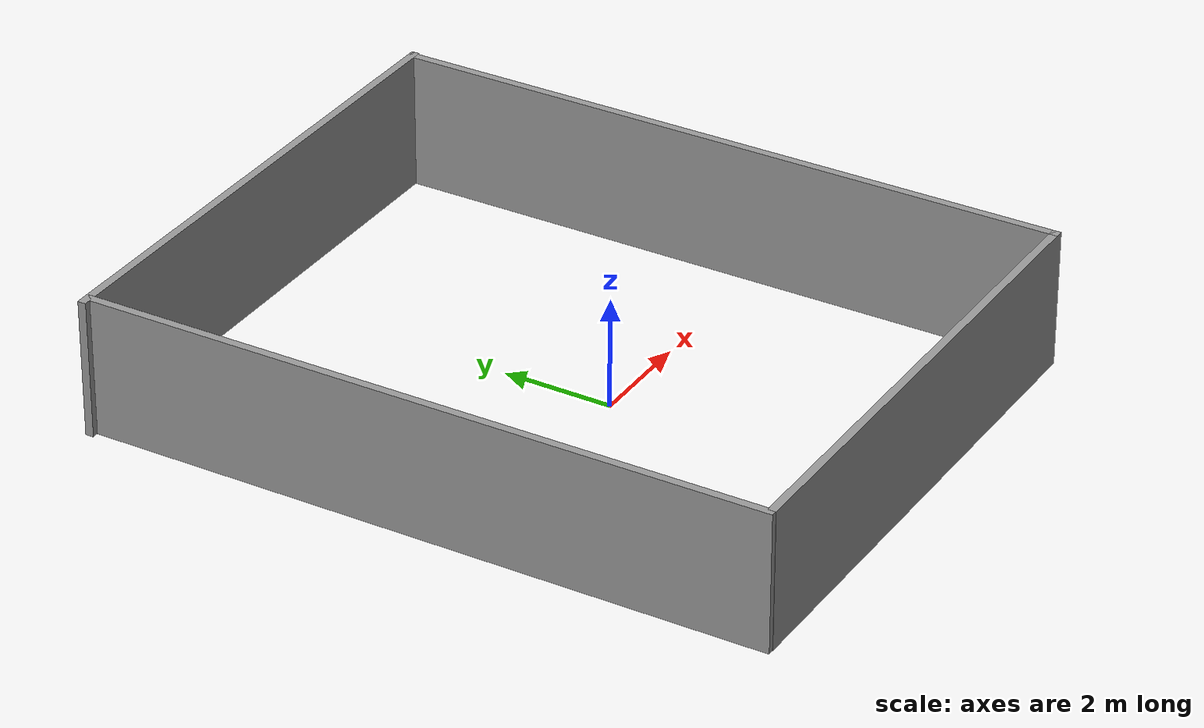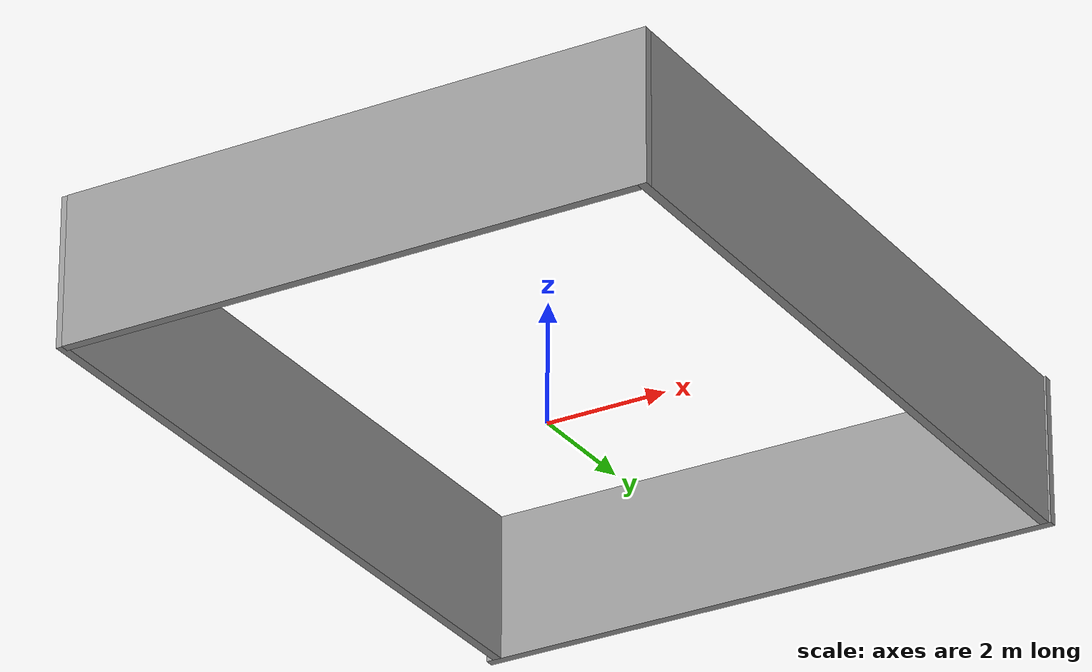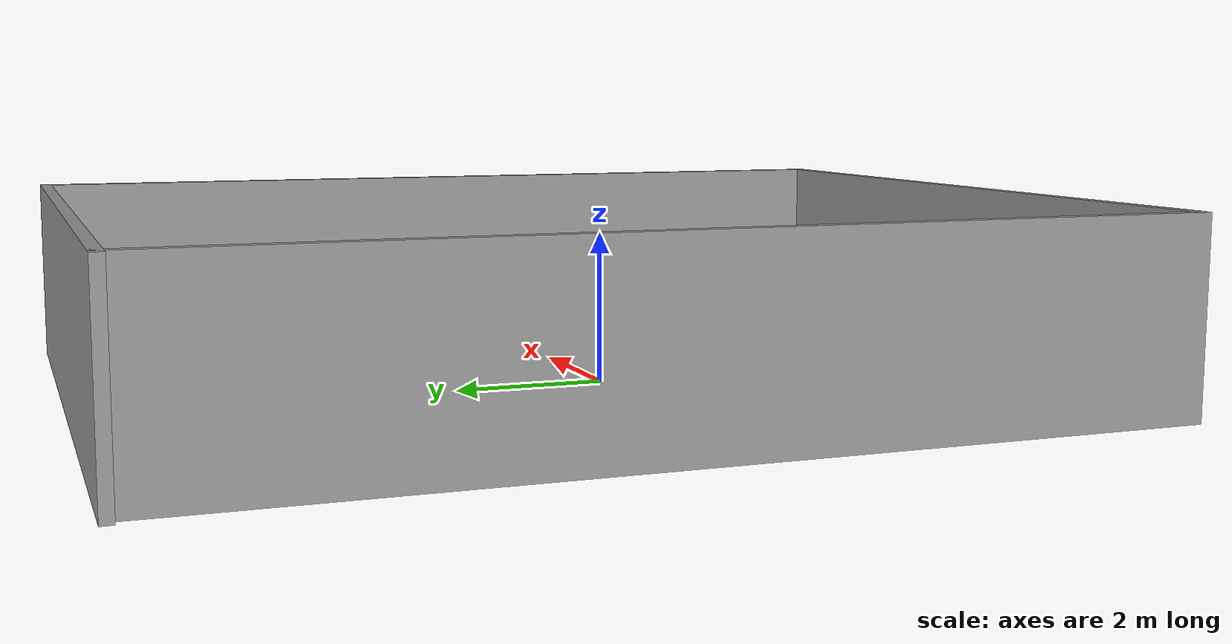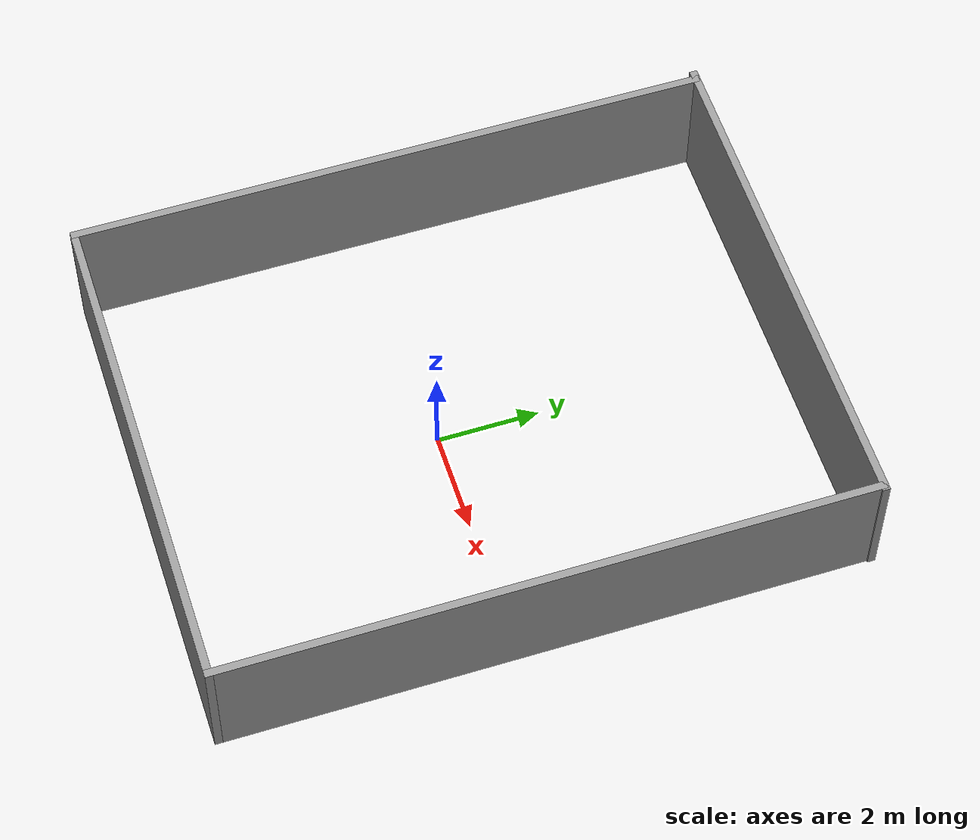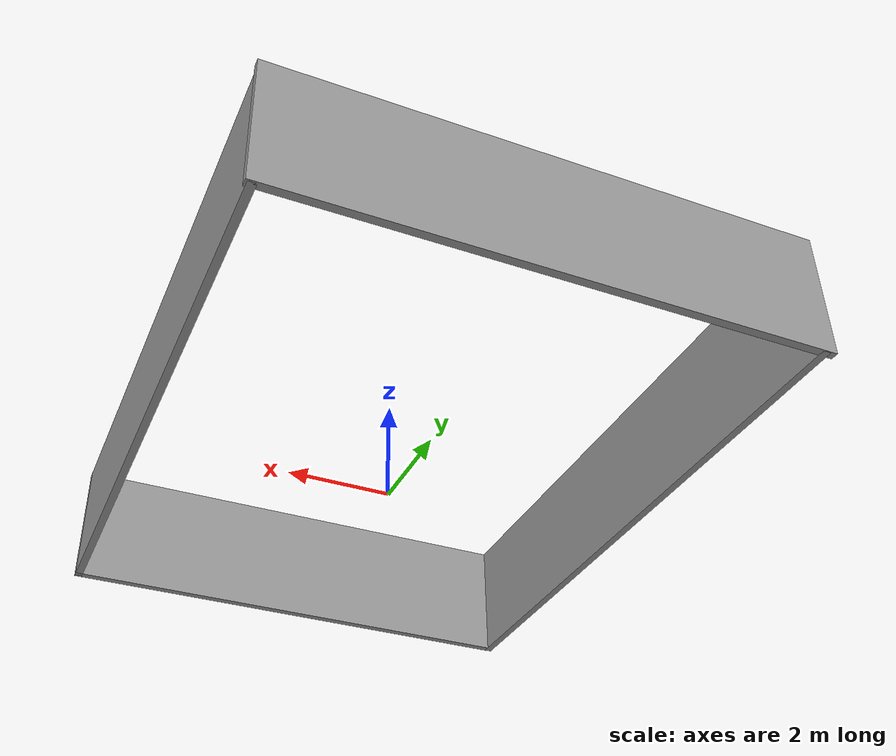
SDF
<?xml version='1.0'?>
<sdf version='1.7'>
  <model name='Building_1'>
    <pose>-0.066403 0.607288 0 0 -0 0</pose>
    <link name='Wall_0'>
      <collision name='Wall_0_Collision'>
        <geometry>
          <box>
            <size>12.5 0.15 2.5</size>
          </box>
        </geometry>
        <pose>0 0 1.25 0 -0 0</pose>
      </collision>
      <visual name='Wall_0_Visual'>
        <pose>0 0 1.25 0 -0 0</pose>
        <geometry>
          <box>
            <size>12.5 0.15 2.5</size>
          </box>
        </geometry>
        <material>
          <script>
            <uri>file://media/materials/scripts/gazebo.material</uri>
            <name>Gazebo/Grey</name>
          </script>
          <ambient>1 1 1 1</ambient>
        </material>
        <meta>
          <layer>0</layer>
        </meta>
      </visual>
      <pose>-4.8106 -0.006896 0 0 -0 1.5708</pose>
    </link>
    <link name='Wall_4'>
      <collision name='Wall_4_Collision'>
        <geometry>
          <box>
            <size>10 0.15 2.5</size>
          </box>
        </geometry>
        <pose>0 0 1.25 0 -0 0</pose>
      </collision>
      <visual name='Wall_4_Visual'>
        <pose>0 0 1.25 0 -0 0</pose>
        <geometry>
          <box>
            <size>10 0.15 2.5</size>
          </box>
        </geometry>
        <material>
          <script>
            <uri>file://media/materials/scripts/gazebo.material</uri>
            <name>Gazebo/Grey</name>
          </script>
          <ambient>1 1 1 1</ambient>
        </material>
        <meta>
          <layer>0</layer>
        </meta>
      </visual>
      <pose>-0 6.18946 0 0 -0 0</pose>
    </link>
    <link name='Wall_6'>
      <collision name='Wall_6_Collision'>
        <geometry>
          <box>
            <size>12.5 0.15 2.5</size>
          </box>
        </geometry>
        <pose>0 0 1.25 0 -0 0</pose>
      </collision>
      <visual name='Wall_6_Visual'>
        <pose>0 0 1.25 0 -0 0</pose>
        <geometry>
          <box>
            <size>12.5 0.15 2.5</size>
          </box>
        </geometry>
        <material>
          <script>
            <uri>file://media/materials/scripts/gazebo.material</uri>
            <name>Gazebo/Grey</name>
          </script>
          <ambient>1 1 1 1</ambient>
        </material>
        <meta>
          <layer>0</layer>
        </meta>
      </visual>
      <pose>4.89116 -0.01446 0 0 -0 -1.5708</pose>
    </link>
    <link name='Wall_7'>
      <collision name='Wall_7_Collision'>
        <geometry>
          <box>
            <size>9.75 0.15 2.5</size>
          </box>
        </geometry>
        <pose>0 0 1.25 0 -0 0</pose>
      </collision>
      <visual name='Wall_7_Visual'>
        <pose>0 0 1.25 0 -0 0</pose>
        <geometry>
          <box>
            <size>9.75 0.15 2.5</size>
          </box>
        </geometry>
        <material>
          <script>
            <uri>file://media/materials/scripts/gazebo.material</uri>
            <name>Gazebo/Grey</name>
          </script>
          <ambient>1 1 1 1</ambient>
        </material>
        <meta>
          <layer>0</layer>
        </meta>
      </visual>
      <pose>0.09116 -6.18946 0 0 -0 3.14159</pose>
    </link>
    <static>1</static>
  </model>
</sdf>
